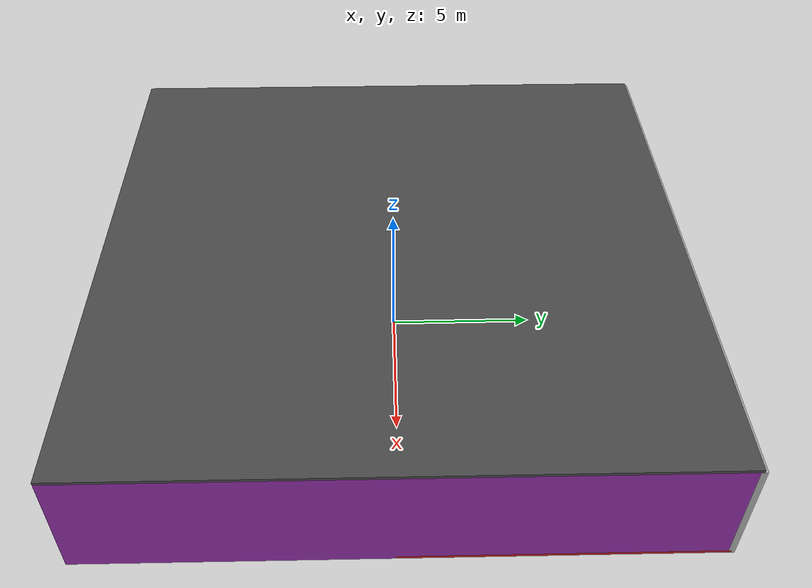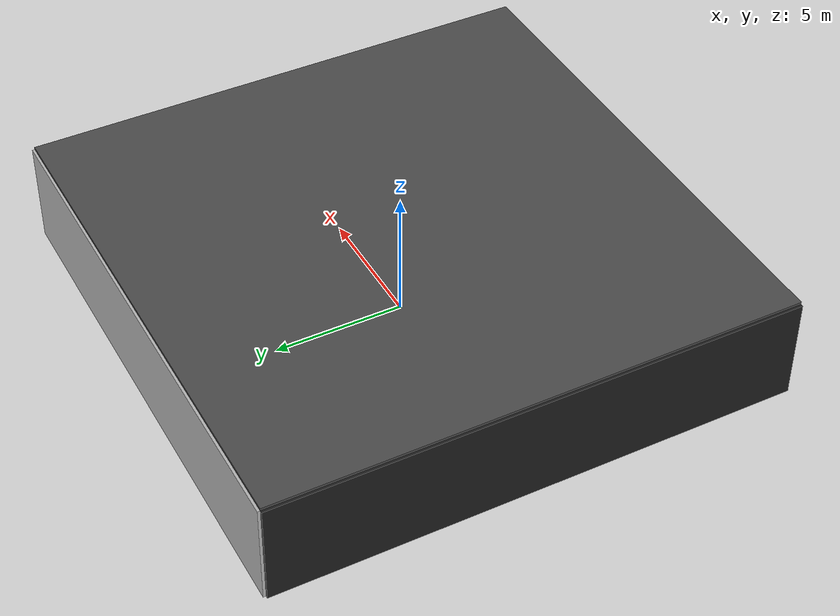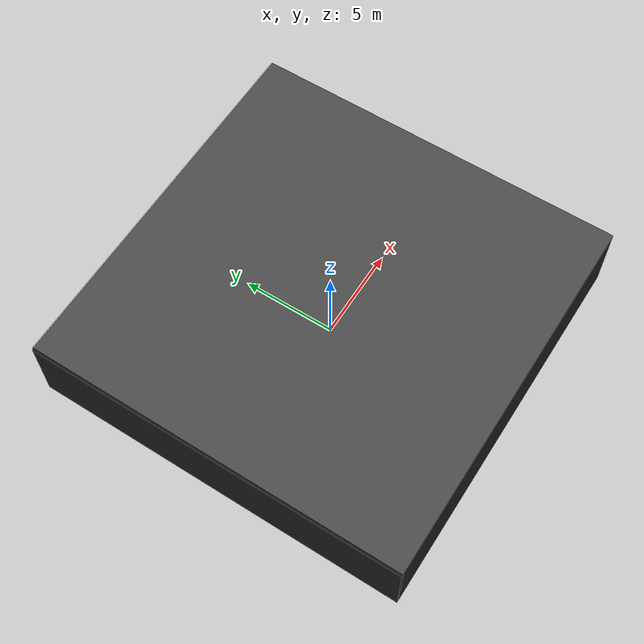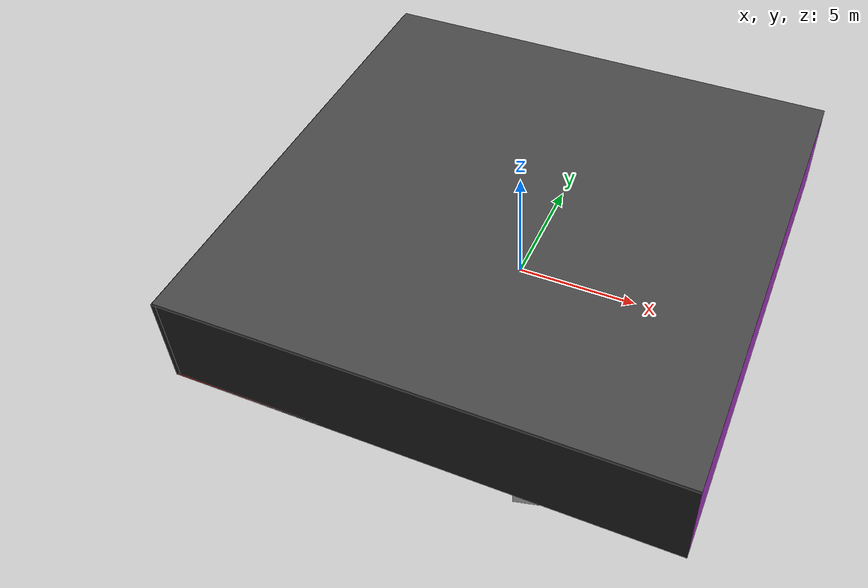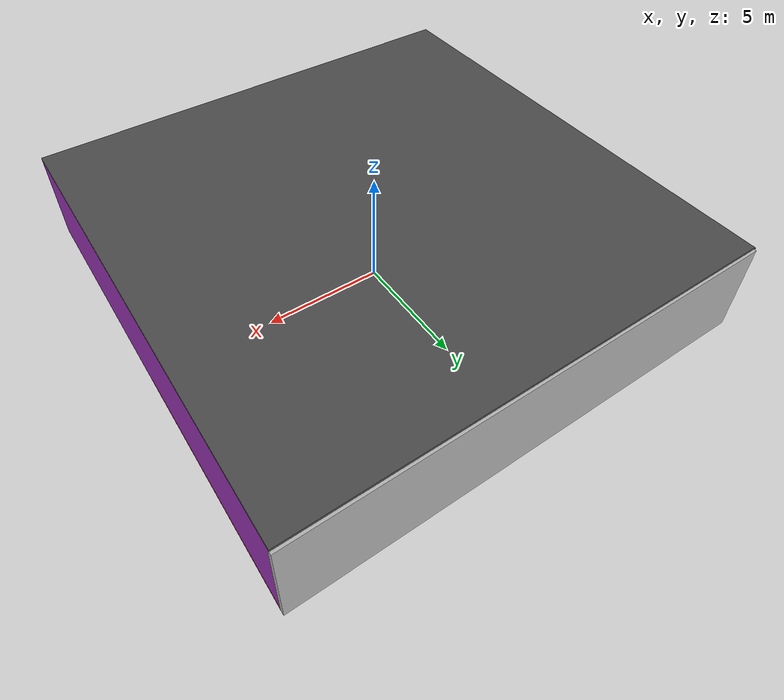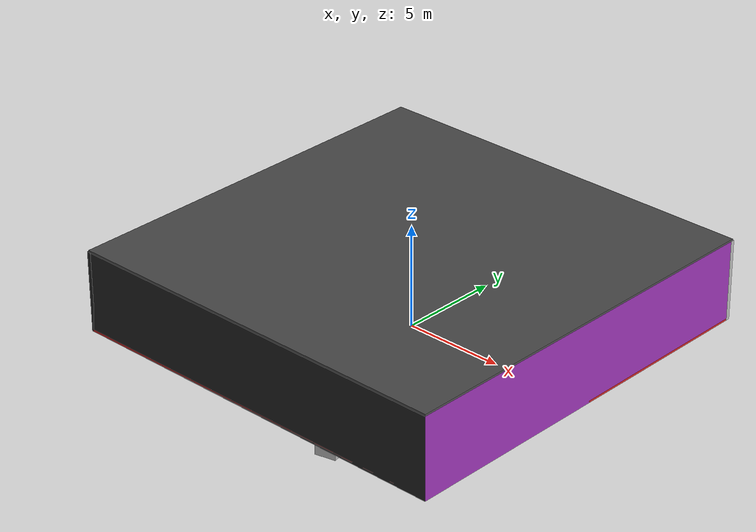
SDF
<sdf version="1.4">
 <world name="default">
  <physics type="ode">
   <max_step_size>0.001</max_step_size>
   <real_time_factor>1</real_time_factor>
   <real_time_update_rate>1000</real_time_update_rate>
   <gravity>0 0 -9.8</gravity>
  </physics>
  <scene><ambient>0.4 0.4 0.4 1</ambient><background>0.7 0.7 0.7 1</background><shadows>1</shadows></scene>
  <model name="Surrounding">
   <static>1</static>
   <link name="Ceiling">
    <collision name="Ceiling_Collision"><geometry><box><size>20 20 0.1</size></box></geometry></collision>
    <visual name="Ceiling_Visual">
     <geometry><box><size>20 20 0.1</size></box></geometry>
     <material>
      <script><uri>file://media/materials/scripts/gazebo.material</uri><name>Gazebo/DarkGrey</name></script>
     </material>
    </visual>
    <pose>0 0 4.05 0 0 0</pose>
   </link>
   <link name="Wall_South">
    <collision name="Wall_South_Collision">
     <geometry><box><size>20 0 4</size></box></geometry>
     <pose>0 0 2 0 -0 0</pose>
    </collision>
    <visual name="Wall_South_Visual">
     <pose>0 0 2 0 -0 0</pose>
     <geometry><box><size>20 0 4</size></box></geometry>
     <material>
      <script><uri>file://media/materials/scripts/gazebo.material</uri><name>Gazebo/FlatBlack</name></script>
     </material>
    </visual>
    <velocity_decay><linear>0</linear><angular>0</angular></velocity_decay>
    <pose>0 -10 0 0 -0 0</pose>
   </link>
   <link name="Wall_East">
    <collision name="Wall_21_Collision">
     <geometry><box><size>20 0 4</size></box></geometry>
     <pose>0 0 2 0 -0 0</pose>
    </collision>
    <visual name="Wall_21_Visual">
     <pose>0 0 2 0 -0 0</pose>
     <geometry><box><size>20 0 4</size></box></geometry>
     <material>
      <script><uri>file://media/materials/scripts/gazebo.material</uri><name>Gazebo/PurpleGlow</name></script>
     </material>
    </visual>
    <velocity_decay><linear>0</linear><angular>0</angular></velocity_decay>
    <pose>10 0 0 0 -0 1.5708</pose>
   </link>
   <link name="Wall_North">
    <collision name="Wall_22_Collision">
     <geometry><box><size>20 0.2 4</size></box></geometry>
     <pose>0 0 2 0 -0 0</pose>
    </collision>
    <visual name="Wall_22_Visual">
     <pose>0 0 2 0 -0 0</pose>
     <geometry><box><size>20 0.2 4</size></box></geometry>
     <material>
      <script><uri>file://media/materials/scripts/gazebo.material</uri><name>Gazebo/LightOff</name></script>
     </material>
    </visual>
    <velocity_decay><linear>0</linear><angular>0</angular></velocity_decay>
    <pose>0 10 0 0 -0 0</pose>
   </link>
   <link name="Wall_West">
    <collision name="Wall_23_Collision">
     <geometry><box><size>20 0.2 4</size></box></geometry>
     <pose>0 0 2 0 -0 0</pose>
    </collision>
    <visual name="Wall_23_Visual">
     <pose>0 0 2 0 -0 0</pose>
     <geometry><box><size>20 0.2 4</size></box></geometry>
     <material>
      <script><uri>file://media/materials/scripts/gazebo.material</uri><name>Gazebo/FlatBlack</name></script>
     </material>
    </visual>
    <velocity_decay><linear>0</linear><angular>0</angular></velocity_decay>
    <pose>-10 0 0 0 0 -1.5708</pose>
   </link>
   <link name="Ground_link">
    <collision name="collision">
     <pose>0 0 .05 0 -0 0</pose>
     <geometry><box><size>20 20 0.1</size></box></geometry>
    </collision>
    <visual name="visual">
     <pose>0 0 .05 0 -0 0</pose>
     <geometry><box><size>20 20 0.1</size></box></geometry>
     <material>
      <script><uri>file://media/materials/scripts/gazebo.material</uri><name>Gazebo/RedBright</name></script>
     </material>
    </visual>
   </link>
   <static>1</static>
  </model>
  <spherical_coordinates>
   <surface_model>EARTH_WGS84</surface_model>
   <latitude_deg>0</latitude_deg>
   <longitude_deg>0</longitude_deg>
   <elevation>0</elevation>
   <heading_deg>0</heading_deg>
  </spherical_coordinates>
  <light name="lightball_0" type="diffuse">
   <diffuse>0.8 0.8 0.8 1</diffuse>
   <specular>0.2 0.2 0.2 1</specular>
   <attenuation>
    <range>100</range>
    <constant>0.7</constant>
    <linear>0.01</linear>
    <quadratic>0.001</quadratic>
   </attenuation>
   <direction>-0.5 0.1 -0.9</direction>
   <pose>7.73803933518 -6.05547112093 1.38736336639 0 0 0</pose>
  </light>
  <light name="lightball_1" type="diffuse">
   <diffuse>0.8 0.8 0.8 1</diffuse>
   <specular>0.2 0.2 0.2 1</specular>
   <attenuation>
    <range>100</range>
    <constant>0.7</constant>
    <linear>0.01</linear>
    <quadratic>0.001</quadratic>
   </attenuation>
   <direction>-0.5 0.1 -0.9</direction>
   <pose>-3.85659363685 -6.94968727186 1.65091062181 0 0 0</pose>
  </light>
  <light name="lightball_2" type="diffuse">
   <diffuse>0.8 0.8 0.8 1</diffuse>
   <specular>0.2 0.2 0.2 1</specular>
   <attenuation>
    <range>100</range>
    <constant>0.7</constant>
    <linear>0.01</linear>
    <quadratic>0.001</quadratic>
   </attenuation>
   <direction>-0.5 0.1 -0.9</direction>
   <pose>4.15940110444 -7.76801522667 1.48687483781 0 0 0</pose>
  </light>
  <light name="lightball_3" type="diffuse">
   <diffuse>0.8 0.8 0.8 1</diffuse>
   <specular>0.2 0.2 0.2 1</specular>
   <attenuation>
    <range>100</range>
    <constant>0.7</constant>
    <linear>0.01</linear>
    <quadratic>0.001</quadratic>
   </attenuation>
   <direction>-0.5 0.1 -0.9</direction>
   <pose>-3.67362781393 -4.7484315505 3.85552171439 0 0 0</pose>
  </light>
  <light name="lightball_4" type="diffuse">
   <diffuse>0.8 0.8 0.8 1</diffuse>
   <specular>0.2 0.2 0.2 1</specular>
   <attenuation>
    <range>100</range>
    <constant>0.7</constant>
    <linear>0.01</linear>
    <quadratic>0.001</quadratic>
   </attenuation>
   <direction>-0.5 0.1 -0.9</direction>
   <pose>3.695186454 6.91822965665 0.928325625369 0 0 0</pose>
  </light>
  <light name="lightball_5" type="diffuse">
   <diffuse>0.8 0.8 0.8 1</diffuse>
   <specular>0.2 0.2 0.2 1</specular>
   <attenuation>
    <range>100</range>
    <constant>0.7</constant>
    <linear>0.01</linear>
    <quadratic>0.001</quadratic>
   </attenuation>
   <direction>-0.5 0.1 -0.9</direction>
   <pose>-4.25378582387 -5.75073670735 2.3624695523 0 0 0</pose>
  </light>
  <light name="lightball_6" type="diffuse">
   <diffuse>0.8 0.8 0.8 1</diffuse>
   <specular>0.2 0.2 0.2 1</specular>
   <attenuation>
    <range>100</range>
    <constant>0.7</constant>
    <linear>0.01</linear>
    <quadratic>0.001</quadratic>
   </attenuation>
   <direction>-0.5 0.1 -0.9</direction>
   <pose>7.24017004877 0.186015694265 0.838881196387 0 0 0</pose>
  </light>
  <light name="lightball_7" type="diffuse">
   <diffuse>0.8 0.8 0.8 1</diffuse>
   <specular>0.2 0.2 0.2 1</specular>
   <attenuation>
    <range>100</range>
    <constant>0.7</constant>
    <linear>0.01</linear>
    <quadratic>0.001</quadratic>
   </attenuation>
   <direction>-0.5 0.1 -0.9</direction>
   <pose>-9.05825210067 -2.74873826047 1.25357875209 0 0 0</pose>
  </light>
  <light name="lightball_8" type="diffuse">
   <diffuse>0.8 0.8 0.8 1</diffuse>
   <specular>0.2 0.2 0.2 1</specular>
   <attenuation>
    <range>100</range>
    <constant>0.7</constant>
    <linear>0.01</linear>
    <quadratic>0.001</quadratic>
   </attenuation>
   <direction>-0.5 0.1 -0.9</direction>
   <pose>-2.61973655713 -7.5854570553 1.24604640909 0 0 0</pose>
  </light>
  <include><uri>model://cabinet</uri><pose>-6.7031546628 -4.89999991225 0 0 0 1.18001406844</pose></include>
  <include><uri>model://table</uri><pose>-7.22318814938 2.24939369635 0 0 0 1.54215051058</pose></include>
  <include>
   <uri>model://robocup_3Dsim_goal</uri>
   <pose>-4.80827079618 -1.90789224149 0 0 0 2.13520791227</pose>
  </include>
  <include>
   <uri>model://robocup_3Dsim_goal</uri>
   <pose>-4.24310173475 3.70433380922 0 0 0 1.65068237907</pose>
  </include>
  <include>
   <uri>model://construction_cone</uri>
   <pose>1.31117385152 -3.9152037191 0 0 0 1.91291121517</pose>
  </include>
  <include><uri>model://cabinet</uri><pose>1.33008266876 1.37884783946 0 0 0 1.85884663776</pose></include>
  <include>
   <uri>model://textured_shapes</uri>
   <pose>3.78915100531 -7.88791649169 0 0 0 0.222177578411</pose>
  </include>
  <include>
   <uri>model://robocup_3Dsim_goal</uri>
   <pose>4.91233127899 -1.35087577114 0 0 0 0.816007689043</pose>
  </include>
  <include><uri>model://table</uri><pose>4.53643389586 4.23904960731 0 0 0 1.49961297953</pose></include>
  <include><uri>model://table</uri><pose>7.47392197539 -0.948540616795 0 0 0 1.17207125242</pose></include>
 </world>
</sdf>

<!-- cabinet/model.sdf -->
<sdf version="1.5">
  <model name="cabinet">
    <static>true</static>
    <link name="cabinet_bottom_plate">
      <inertial>
        <pose>0 0 -1 0 0 0</pose>
        <inertia>
          <ixx>2.050000</ixx>
          <ixy>0</ixy>
          <ixz>0</ixz>
          <iyy>2.050000</iyy>
          <iyz>0</iyz>
          <izz>2.050000</izz>
        </inertia>
        <mass>25.000000</mass>
      </inertial>
      <collision name="cabinet_bottom_plate_geom">
        <pose>0 0 0.010000 0 0 0</pose>
        <geometry>
          <box>
            <size>0.450000 0.450000 0.020000</size>
          </box>
        </geometry>
      </collision>
      <visual name="cabinet_bottom_plate_geom_visual">
        <pose>0 0 0.010000 0 0 0</pose>
        <geometry>
          <box>
            <size>0.450000 0.450000 0.020000</size>
          </box>
        </geometry>
        <material>
          <script>
            <uri>model://media/materials/scripts/gazebo.material</uri>
            <name>Gazebo/Wood</name>
          </script>
        </material>
      </visual>
      <collision name="cabinet_bottom_plate_geom_cabinet_back_plate">
        <pose>0.235000 0 0.510000 0 0 0</pose>
        <geometry>
          <box>
            <size>0.020000 0.450000 1.020000</size>
          </box>
        </geometry>
      </collision>
      <visual name="cabinet_bottom_plate_geom_cabinet_back_plate_visual">
        <pose>0.235000 0 0.510000 0 0 0</pose>
        <geometry>
          <box>
            <size>0.020000 0.450000 1.020000</size>
          </box>
        </geometry>
        <material>
          <script>
            <uri>model://media/materials/scripts/gazebo.material</uri>
            <name>Gazebo/Wood</name>
          </script>
        </material>
      </visual>
      <collision name="cabinet_bottom_plate_geom_cabinet_left_plate">
        <pose>0 0.235000 0.510000 0 0 0</pose>
        <geometry>
          <box>
            <size>0.450000 0.020000 1.020000</size>
          </box>
        </geometry>
      </collision>
      <visual name="cabinet_bottom_plate_geom_cabinet_left_plate_visual">
        <pose>0 0.235000 0.510000 0 0 0</pose>
        <geometry>
          <box>
            <size>0.450000 0.020000 1.020000</size>
          </box>
        </geometry>
        <material>
          <script>
            <uri>model://media/materials/scripts/gazebo.material</uri>
            <name>Gazebo/Wood</name>
          </script>
        </material>
      </visual>
      <collision name="cabinet_bottom_plate_geom_cabinet_middle_plate">
        <pose>0 0 0.510000 0 0 0</pose>
        <geometry>
          <box>
            <size>0.450000 0.450000 0.020000</size>
          </box>
        </geometry>
      </collision>
      <visual name="cabinet_bottom_plate_geom_cabinet_middle_plate_visual">
        <pose>0 0 0.510000 0 0 0</pose>
        <geometry>
          <box>
            <size>0.450000 0.450000 0.020000</size>
          </box>
        </geometry>
        <material>
          <script>
            <uri>model://media/materials/scripts/gazebo.material</uri>
            <name>Gazebo/Wood</name>
          </script>
        </material>
      </visual>
      <collision name="cabinet_bottom_plate_geom_cabinet_right_plate">
        <pose>0 -0.235000 0.510000 0 0 0</pose>
        <geometry>
          <box>
            <size>0.450000 0.020000 1.020000</size>
          </box>
        </geometry>
      </collision>
      <visual name="cabinet_bottom_plate_geom_cabinet_right_plate_visual">
        <pose>0 -0.235000 0.510000 0 0 0</pose>
        <geometry>
          <box>
            <size>0.450000 0.020000 1.020000</size>
          </box>
        </geometry>
        <material>
          <script>
            <uri>model://media/materials/scripts/gazebo.material</uri>
            <name>Gazebo/Wood</name>
          </script>
        </material>
      </visual>
      <collision name="cabinet_bottom_plate_geom_cabinet_top_plate">
        <pose>0 0 1.010000 0 0 0</pose>
        <geometry>
          <box>
            <size>0.450000 0.450000 0.020000</size>
          </box>
        </geometry>
      </collision>
      <visual name="cabinet_bottom_plate_geom_cabinet_top_plate_visual">
        <pose>0 0 1.010000 0 0 0</pose>
        <geometry>
          <box>
            <size>0.450000 0.450000 0.020000</size>
          </box>
        </geometry>
        <material>
          <script>
            <uri>model://media/materials/scripts/gazebo.material</uri>
            <name>Gazebo/Wood</name>
          </script>
        </material>
      </visual>
    </link>
  </model>
</sdf>

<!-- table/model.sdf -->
<sdf version="1.5">
  <model name="table">
    <static>true</static>
    <link name="link">
      <collision name="surface">
        <pose>0 0 1.0 0 0 0</pose>
        <geometry>
          <box>
            <size>1.5 0.8 0.03</size>
          </box>
        </geometry>
        <surface>
          <friction>
            <ode>
              <mu>0.6</mu>
              <mu2>0.6</mu2>
            </ode>
          </friction>
        </surface>
      </collision>
      <visual name="visual1">
        <pose>0 0 1.0 0 0 0</pose>
        <geometry>
          <box>
            <size>1.5 0.8 0.03</size>
          </box>
        </geometry>
        <material>
          <script>
            <uri>model://media/materials/scripts/gazebo.material</uri>
            <name>Gazebo/Wood</name>
          </script>
        </material>
      </visual>
      <collision name="front_left_leg">
        <pose>0.68 0.38 0.5 0 0 0</pose>
        <geometry>
          <cylinder>
            <radius>0.02</radius>
            <length>1.0</length>
          </cylinder>
        </geometry>
      </collision>
      <visual name="front_left_leg">
        <pose>0.68 0.38 0.5 0 0 0</pose>
        <geometry>
          <cylinder>
            <radius>0.02</radius>
            <length>1.0</length>
          </cylinder>
        </geometry>
        <material>
          <script>
            <uri>model://media/materials/scripts/gazebo.material</uri>
            <name>Gazebo/Grey</name>
          </script>
        </material>
      </visual>
      <collision name="front_right_leg">
        <pose>0.68 -0.38 0.5 0 0 0</pose>
        <geometry>
          <cylinder>
            <radius>0.02</radius>
            <length>1.0</length>
          </cylinder>
        </geometry>
      </collision>
      <visual name="front_right_leg">
        <pose>0.68 -0.38 0.5 0 0 0</pose>
        <geometry>
          <cylinder>
            <radius>0.02</radius>
            <length>1.0</length>
          </cylinder>
        </geometry>
        <material>
          <script>
            <uri>model://media/materials/scripts/gazebo.material</uri>
            <name>Gazebo/Grey</name>
          </script>
        </material>
      </visual>
      <collision name="back_right_leg">
        <pose>-0.68 -0.38 0.5 0 0 0</pose>
        <geometry>
          <cylinder>
            <radius>0.02</radius>
            <length>1.0</length>
          </cylinder>
        </geometry>
      </collision>
      <visual name="back_right_leg">
        <pose>-0.68 -0.38 0.5 0 0 0</pose>
        <geometry>
          <cylinder>
            <radius>0.02</radius>
            <length>1.0</length>
          </cylinder>
        </geometry>
        <material>
          <script>
            <uri>model://media/materials/scripts/gazebo.material</uri>
            <name>Gazebo/Grey</name>
          </script>
        </material>
      </visual>
      <collision name="back_left_leg">
        <pose>-0.68 0.38 0.5 0 0 0</pose>
        <geometry>
          <cylinder>
            <radius>0.02</radius>
            <length>1.0</length>
          </cylinder>
        </geometry>
      </collision>
      <visual name="back_left_leg">
        <pose>-0.68 0.38 0.5 0 0 0</pose>
        <geometry>
          <cylinder>
            <radius>0.02</radius>
            <length>1.0</length>
          </cylinder>
        </geometry>
        <material>
          <script>
            <uri>model://media/materials/scripts/gazebo.material</uri>
            <name>Gazebo/Grey</name>
          </script>
        </material>
      </visual>
    </link>
  </model>
</sdf>

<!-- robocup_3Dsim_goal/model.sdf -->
<sdf version="1.5">
  <model name="robocup_3d_goal">
    <static>true</static>
    <link name="left_post">
      <pose>0 1.05 0.45 0 0 0</pose>
      <collision name="collision">
        <geometry>
          <cylinder>
            <radius>0.05</radius>
            <length>0.9</length>
          </cylinder>
        </geometry>
      </collision>
      <visual name="visual">
        <geometry>
          <cylinder>
            <radius>0.05</radius>
            <length>0.9</length>
          </cylinder>
        </geometry>
        <material>
          <script>
            <uri>file://media/materials/scripts/gazebo.material</uri>
            <name>Gazebo/ZincYellow</name>
          </script>
        </material>
      </visual>
    </link>
    <link name="left_support_horiz_lower">
      <pose>0.30 1.05 0.01 0 0 0</pose>
      <collision name="collision">
        <geometry>
          <box>
            <size>0.50 0.02 0.02</size>
          </box>
        </geometry>
      </collision>
      <visual name="visual">
        <geometry>
          <box>
            <size>0.50 0.02 0.02</size>
          </box>
        </geometry>
        <material>
          <script>
            <uri>file://media/materials/scripts/gazebo.material</uri>
            <name>Gazebo/White</name>
          </script>
        </material>
      </visual>
    </link>
    <link name="left_support_horiz_upper">
      <pose>0.30 1.05 0.79 0 0 0</pose>
      <collision name="collision">
        <geometry>
          <box>
            <size>0.50 0.02 0.02</size>
          </box>
        </geometry>
      </collision>
      <visual name="visual">
        <geometry>
          <box>
            <size>0.50 0.02 0.02</size>
          </box>
        </geometry>
        <material>
          <script>
            <uri>file://media/materials/scripts/gazebo.material</uri>
            <name>Gazebo/White</name>
          </script>
        </material>
      </visual>
    </link>
    <link name="left_support_vertical">
      <pose>0.56 1.05 0.4 0 1.5708 0</pose>
      <collision name="collision">
        <geometry>
          <box>
            <size>0.80 0.02 0.02</size>
          </box>
        </geometry>
      </collision>
      <visual name="visual">
        <geometry>
          <box>
            <size>0.80 0.02 0.02</size>
          </box>
        </geometry>
        <material>
          <script>
            <uri>file://media/materials/scripts/gazebo.material</uri>
            <name>Gazebo/White</name>
          </script>
        </material>
      </visual>
    </link>
    <link name="right_support_horiz_lower">
      <pose>0.30 -1.05 0.01 0 0 0</pose>
      <collision name="collision">
        <geometry>
          <box>
            <size>0.50 0.02 0.02</size>
          </box>
        </geometry>
      </collision>
      <visual name="visual">
        <geometry>
          <box>
            <size>0.50 0.02 0.02</size>
          </box>
        </geometry>
        <material>
          <script>
            <uri>file://media/materials/scripts/gazebo.material</uri>
            <name>Gazebo/White</name>
          </script>
        </material>
      </visual>
    </link>
    <link name="right_support_horiz_upper">
      <pose>0.30 -1.05 0.79 0 0 0</pose>
      <collision name="collision">
        <geometry>
          <box>
            <size>0.50 0.02 0.02</size>
          </box>
        </geometry>
      </collision>
      <visual name="visual">
        <geometry>
          <box>
            <size>0.50 0.02 0.02</size>
          </box>
        </geometry>
        <material>
          <script>
            <uri>file://media/materials/scripts/gazebo.material</uri>
            <name>Gazebo/White</name>
          </script>
        </material>
      </visual>
    </link>
    <link name="right_support_vertical">
      <pose>0.56 -1.05 0.4 0 1.5708 0</pose>
      <collision name="collision">
        <geometry>
          <box>
            <size>0.80 0.02 0.02</size>
          </box>
        </geometry>
      </collision>
      <visual name="visual">
        <geometry>
          <box>
            <size>0.80 0.02 0.02</size>
          </box>
        </geometry>
        <material>
          <script>
            <uri>file://media/materials/scripts/gazebo.material</uri>
            <name>Gazebo/White</name>
          </script>
        </material>
      </visual>
    </link>
    <link name="center_support_horiz_lower">
      <pose>0.56 0 0.01 0 1.5708 0</pose>
      <collision name="collision">
        <geometry>
          <box>
            <size>0.02 2.08 0.02</size>
          </box>
        </geometry>
      </collision>
      <visual name="visual">
        <geometry>
          <box>
            <size>0.02 2.08 0.02</size>
          </box>
        </geometry>
        <material>
          <script>
            <uri>file://media/materials/scripts/gazebo.material</uri>
            <name>Gazebo/White</name>
          </script>
        </material>
      </visual>
    </link>
    <link name="center_support_horiz_upper">
      <pose>0.56 0 0.79 0 1.5708 0</pose>
      <collision name="collision">
        <geometry>
          <box>
            <size>0.02 2.08 0.02</size>
          </box>
        </geometry>
      </collision>
      <visual name="visual">
        <geometry>
          <box>
            <size>0.02 2.08 0.02</size>
          </box>
        </geometry>
        <material>
          <script>
            <uri>file://media/materials/scripts/gazebo.material</uri>
            <name>Gazebo/White</name>
          </script>
        </material>
      </visual>
    </link>
    <link name="right_post">
      <pose>0 -1.05 0.45 0 0 0</pose>
      <collision name="collision">
        <geometry>
          <cylinder>
            <radius>0.05</radius>
            <length>0.9</length>
          </cylinder>
        </geometry>
      </collision>
      <visual name="visual">
        <geometry>
          <cylinder>
            <radius>0.05</radius>
            <length>0.9</length>
          </cylinder>
        </geometry>
        <material>
          <script>
            <uri>file://media/materials/scripts/gazebo.material</uri>
            <name>Gazebo/ZincYellow</name>
          </script>
        </material>
      </visual>
    </link>
    <link name="crossbar">
      <pose>0 0 0.85 1.57 1.57 0</pose>
      <collision name="collision">
        <geometry>
          <cylinder>
            <radius>0.05</radius>
            <length>2.0</length>
          </cylinder>
        </geometry>
      </collision>
      <visual name="visual">
        <geometry>
          <cylinder>
            <radius>0.05</radius>
            <length>2.0</length>
          </cylinder>
        </geometry>
        <material>
          <script>
            <uri>file://media/materials/scripts/gazebo.material</uri>
            <name>Gazebo/ZincYellow</name>
          </script>
        </material>
      </visual>
    </link>
    <link name="center_net">
      <pose>0.56 0 0.40 0 0 0</pose>
      <collision name="collision">
        <geometry>
          <box>
            <size>0.01 2.1 0.80</size>
          </box>
        </geometry>
      </collision>
      <visual name="visual">
        <geometry>
          <box>
            <size>0.01 2.1 0.80</size>
          </box>
        </geometry>
        <material>
          <script>
            <uri>model://../model_source/models/robocup09_spl_field/materials/scripts/</uri>
            <uri>model://../model_source/models/robocup09_spl_field/materials/textures/</uri>
            <name>RoboCup/Net</name>
          </script>
        </material>
      </visual>
    </link>
    <link name="left_net">
      <pose>0.30 1.05 0.40 0 0 0</pose>
      <collision name="collision">
        <geometry>
          <box>
            <size>0.50 0.01 0.76</size>
          </box>
        </geometry>
      </collision>
      <visual name="visual">
        <geometry>
          <box>
            <size>0.50 0.01 0.76</size>
          </box>
        </geometry>
        <material>
          <script>
            <uri>model://../model_source/models/robocup09_spl_field/materials/scripts/</uri>
            <uri>model://../model_source/models/robocup09_spl_field/materials/textures/</uri>
            <name>RoboCup/Net</name>
          </script>
        </material>
      </visual>
    </link>
    <link name="right_net">
      <pose>0.30 -1.05 0.40 0 0 0</pose>
      <collision name="collision">
        <geometry>
          <box>
            <size>0.50 0.01 0.76</size>
          </box>
        </geometry>
      </collision>
      <visual name="visual">
        <geometry>
          <box>
            <size>0.50 0.01 0.76</size>
          </box>
        </geometry>
        <material>
          <script>
            <uri>model://../model_source/models/robocup09_spl_field/materials/scripts/</uri>
            <uri>model://../model_source/models/robocup09_spl_field/materials/textures/</uri>
            <name>RoboCup/Net</name>
          </script>
        </material>
      </visual>
    </link>
  </model>
</sdf>

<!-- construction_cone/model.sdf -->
<sdf version="1.5">
  <model name="Construction Cone">
    <link name="link">
      <collision name="collision">
        <geometry>
          <mesh>
            <scale>10 10 10</scale>
            <uri>file://isr-testbed/construction_cone/meshes/construction_cone.dae</uri>
          </mesh>
        </geometry>
      </collision>
      <visual name="visual">
        <geometry>
          <mesh>
            <scale>10 10 10</scale>
            <uri>file://isr-testbed/construction_cone/meshes/construction_cone.dae</uri>
          </mesh>
        </geometry>
      </visual>
    </link>
  </model>
</sdf>

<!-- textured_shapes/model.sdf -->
<sdf version="1.6">
  <model name="textured_shapes">
    <pose>0 0 0.5 0 0 0</pose>
    <link name="box">
      <pose>0 -1.5 0 0 0 0</pose>
      <collision name="collision">
        <geometry>
          <box>
            <size>1 1 1</size>
          </box>
        </geometry>
      </collision>
      <visual name="visual">
        <geometry>
          <box>
            <size>1 1 1</size>
          </box>
        </geometry>
        <material>
          <script>
            <uri>model://../model_source/models/textured_shapes/materials/scripts</uri>
            <uri>model://../model_source/models/textured_shapes/materials/textures</uri>
            <name>TexturedShape/Squares</name>
          </script>
        </material>
      </visual>
    </link>
    <link name="sphere">
      <collision name="collision">
        <geometry>
          <sphere>
            <radius>0.5</radius>
          </sphere>
        </geometry>
      </collision>
      <visual name="visual">
        <geometry>
          <sphere>
            <radius>0.5</radius>
          </sphere>
        </geometry>
        <material>
          <script>
            <uri>model://../model_source/models/textured_shapes/materials/scripts</uri>
            <uri>model://../model_source/models/textured_shapes/materials/textures</uri>
            <name>TexturedShape/Squares</name>
          </script>
        </material>
      </visual>
    </link>
    <link name="cylinder">
      <pose>0 1.5 0 0 0 0</pose>
      <collision name="collision">
        <geometry>
          <cylinder>
            <radius>0.5</radius>
            <length>1</length>
          </cylinder>
        </geometry>
      </collision>
      <visual name="visual">
        <geometry>
          <cylinder>
            <radius>0.5</radius>
            <length>1</length>
          </cylinder>
        </geometry>
        <material>
          <script>
            <uri>model://../model_source/models/textured_shapes/materials/scripts</uri>
            <uri>model://../model_source/models/textured_shapes/materials/textures</uri>
            <name>TexturedShape/Squares</name>
          </script>
        </material>
      </visual>
    </link>
  </model>
</sdf>
